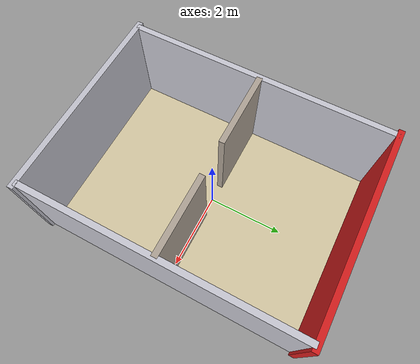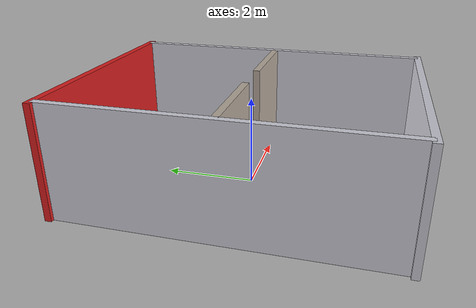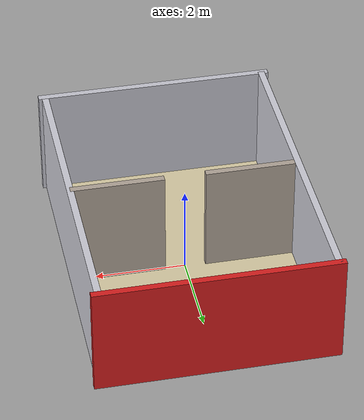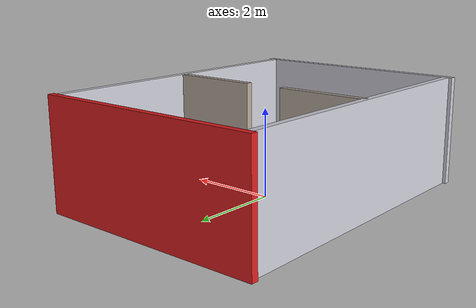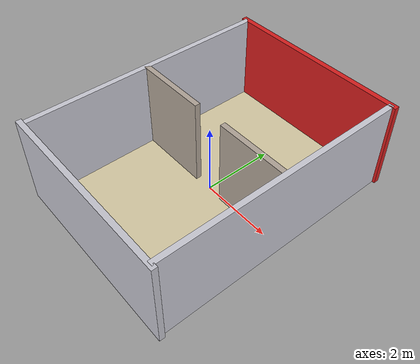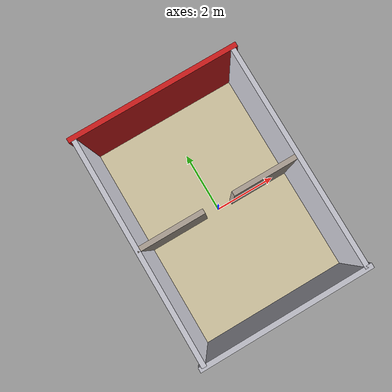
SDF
<sdf version="1.9">
 <world name="apartment_small">
  <physics name="1ms" type="ignored">
   <max_step_size>0.001</max_step_size>
   <real_time_factor>1.0</real_time_factor>
  </physics>
  <plugin filename="gz-sim-physics-system" name="gz::sim::systems::Physics"/>
  <plugin filename="gz-sim-scene-broadcaster-system" name="gz::sim::systems::SceneBroadcaster"/>
  <plugin filename="gz-sim-user-commands-system" name="gz::sim::systems::UserCommands"/>
  <plugin filename="gz-sim-sensors-system" name="gz::sim::systems::Sensors">
   <render_engine>ogre2</render_engine>
  </plugin>
  <plugin filename="gz-sim-imu-system" name="gz::sim::systems::Imu"/>
  <plugin filename="gz-sim-navsat-system" name="gz::sim::systems::NavSat"/>
  <spherical_coordinates>
   <latitude_deg>-35.363262</latitude_deg>
   <longitude_deg>149.165237</longitude_deg>
   <elevation>584</elevation>
   <heading_deg>0</heading_deg>
   <surface_model>EARTH_WGS84</surface_model>
  </spherical_coordinates>
  <light type="directional" name="main_light">
   <cast_shadows>false</cast_shadows>
   <pose>0 0 10 0 0 0</pose>
   <diffuse>1.0 1.0 1.0 1</diffuse>
   <specular>0.5 0.5 0.5 1</specular>
   <direction>0.1 0.1 -1</direction>
  </light>
  <model name="floor">
   <static>true</static>
   <link name="link">
    <collision name="c"><geometry><box><size>5 7 0.05</size></box></geometry></collision>
    <visual name="v">
     <geometry><box><size>5 7 0.05</size></box></geometry>
     <material>
      <ambient>0.85 0.80 0.65 1</ambient>
      <diffuse>0.85 0.80 0.65 1</diffuse>
      <specular>0.1 0.1 0.1 1</specular>
     </material>
    </visual>
   </link>
  </model>
  <model name="wall_north">
   <static>true</static>
   <pose>0 3.5 1.25 0 0 0</pose>
   <link name="link">
    <collision name="c"><geometry><box><size>5.3 0.15 2.5</size></box></geometry></collision>
    <visual name="v">
     <geometry><box><size>5.3 0.15 2.5</size></box></geometry>
     <material><ambient>0.85 0.12 0.12 1</ambient><diffuse>0.85 0.12 0.12 1</diffuse></material>
    </visual>
   </link>
  </model>
  <model name="wall_south">
   <static>true</static>
   <pose>0 -3.5 1.25 0 0 0</pose>
   <link name="link">
    <collision name="c"><geometry><box><size>5.3 0.15 2.5</size></box></geometry></collision>
    <visual name="v">
     <geometry><box><size>5.3 0.15 2.5</size></box></geometry>
     <material><ambient>0.78 0.78 0.82 1</ambient><diffuse>0.78 0.78 0.82 1</diffuse></material>
    </visual>
   </link>
  </model>
  <model name="wall_west">
   <static>true</static>
   <pose>-2.5 0 1.25 0 0 0</pose>
   <link name="link">
    <collision name="c"><geometry><box><size>0.15 7.0 2.5</size></box></geometry></collision>
    <visual name="v">
     <geometry><box><size>0.15 7.0 2.5</size></box></geometry>
     <material><ambient>0.80 0.80 0.84 1</ambient><diffuse>0.80 0.80 0.84 1</diffuse></material>
    </visual>
   </link>
  </model>
  <model name="wall_east">
   <static>true</static>
   <pose>2.5 0 1.25 0 0 0</pose>
   <link name="link">
    <collision name="c"><geometry><box><size>0.15 7.0 2.5</size></box></geometry></collision>
    <visual name="v">
     <geometry><box><size>0.15 7.0 2.5</size></box></geometry>
     <material><ambient>0.80 0.80 0.84 1</ambient><diffuse>0.80 0.80 0.84 1</diffuse></material>
    </visual>
   </link>
  </model>
  <model name="wall_inner_left">
   <static>true</static>
   <pose>-1.475 0 1.25 0 0 0</pose>
   <link name="link">
    <collision name="c"><geometry><box><size>2.05 0.15 2.5</size></box></geometry></collision>
    <visual name="v">
     <geometry><box><size>2.05 0.15 2.5</size></box></geometry>
     <material><ambient>0.70 0.65 0.60 1</ambient><diffuse>0.70 0.65 0.60 1</diffuse></material>
    </visual>
   </link>
  </model>
  <model name="wall_inner_right">
   <static>true</static>
   <pose>1.475 0 1.25 0 0 0</pose>
   <link name="link">
    <collision name="c"><geometry><box><size>2.05 0.15 2.5</size></box></geometry></collision>
    <visual name="v">
     <geometry><box><size>2.05 0.15 2.5</size></box></geometry>
     <material><ambient>0.70 0.65 0.60 1</ambient><diffuse>0.70 0.65 0.60 1</diffuse></material>
    </visual>
   </link>
  </model>
 </world>
</sdf>
